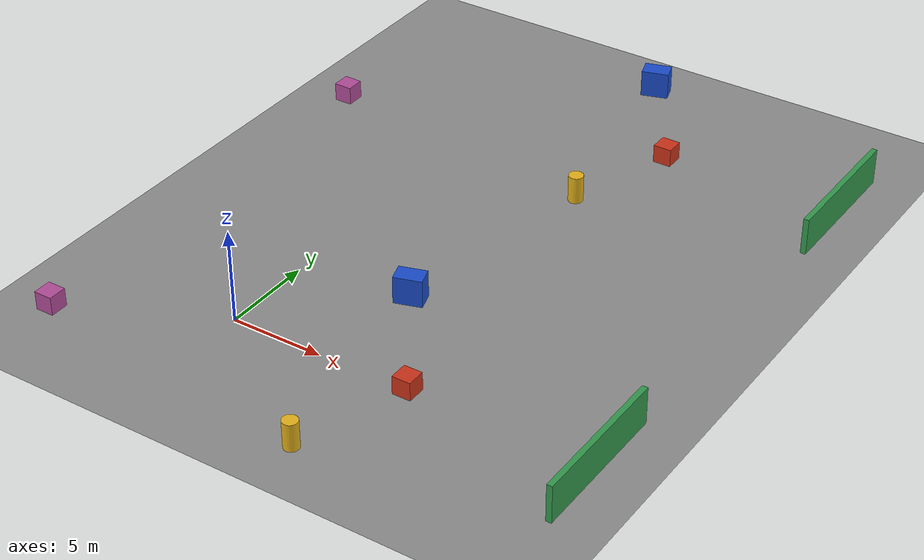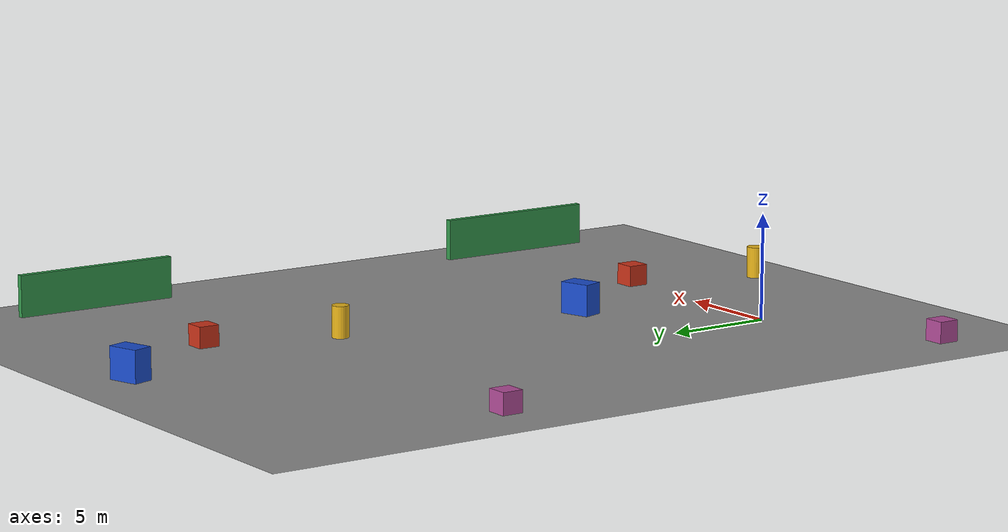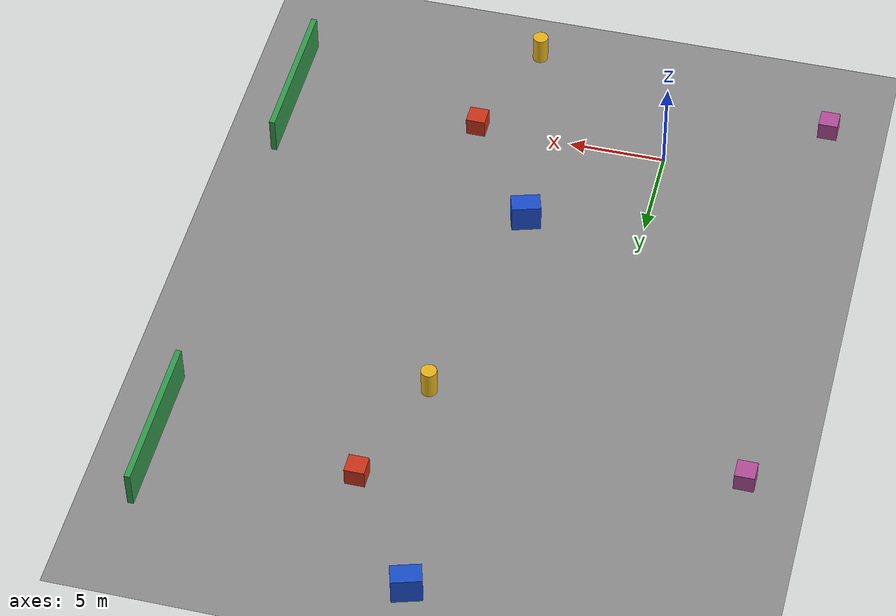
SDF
<sdf version="1.6">
 <world name="rover_simple">
  <spherical_coordinates>
   <surface_model>EARTH_WGS84</surface_model>
   <world_frame_orientation>ENU</world_frame_orientation>
   <latitude_deg>-3.123150</latitude_deg>
   <longitude_deg>-41.764495</longitude_deg>
   <elevation>77</elevation>
   <heading_deg>90</heading_deg>
  </spherical_coordinates>
  <physics name="ode" type="ode">
   <max_step_size>0.001</max_step_size>
   <real_time_update_rate>1000</real_time_update_rate>
  </physics>
  <scene><ambient>0.5 0.5 0.5 1</ambient><background>0.7 0.8 0.9 1</background><shadows>false</shadows></scene>
  <light name="sun" type="directional">
   <pose>0 0 10 0 0 0</pose>
   <diffuse>0.9 0.9 0.9 1</diffuse>
   <specular>0.1 0.1 0.1 1</specular>
   <direction>-0.5 0.2 -1</direction>
  </light>
  <model name="ground">
   <static>true</static>
   <link name="link">
    <collision name="collision">
     <geometry><plane><normal>0 0 1</normal><size>120 120</size></plane></geometry>
     <surface><friction><ode><mu>1</mu><mu2>1</mu2></ode></friction></surface>
    </collision>
    <visual name="visual">
     <geometry><plane><normal>0 0 1</normal><size>120 120</size></plane></geometry>
     <material><ambient>0.55 0.55 0.55 1</ambient><diffuse>0.55 0.55 0.55 1</diffuse></material>
    </visual>
   </link>
  </model>
  <model name="box_front">
   <static>true</static>
   <pose>10.0 0.0 0.5 0 0 0</pose>
   <link name="link">
    <collision name="collision"><geometry><box><size>1 1 1</size></box></geometry></collision>
    <visual name="visual">
     <geometry><box><size>1 1 1</size></box></geometry>
     <material><ambient>0.8 0.2 0.1 1</ambient><diffuse>0.8 0.2 0.1 1</diffuse></material>
    </visual>
   </link>
  </model>
  <model name="box_left">
   <static>true</static>
   <pose>6.0 6.0 0.75 0 0 0.3</pose>
   <link name="link">
    <collision name="collision"><geometry><box><size>1.5 1 1.5</size></box></geometry></collision>
    <visual name="visual">
     <geometry><box><size>1.5 1 1.5</size></box></geometry>
     <material><ambient>0.1 0.3 0.8 1</ambient><diffuse>0.1 0.3 0.8 1</diffuse></material>
    </visual>
   </link>
  </model>
  <model name="pillar_right">
   <static>true</static>
   <pose>8.0 -6.0 0.75 0 0 0</pose>
   <link name="link">
    <collision name="collision">
     <geometry><cylinder><radius>0.4</radius><length>1.5</length></cylinder></geometry>
    </collision>
    <visual name="visual">
     <geometry><cylinder><radius>0.4</radius><length>1.5</length></cylinder></geometry>
     <material><ambient>0.9 0.7 0.1 1</ambient><diffuse>0.9 0.7 0.1 1</diffuse></material>
    </visual>
   </link>
  </model>
  <model name="wall">
   <static>true</static>
   <pose>20.0 0.0 1 0 0 0</pose>
   <link name="link">
    <collision name="collision"><geometry><box><size>0.3 8 2</size></box></geometry></collision>
    <visual name="visual">
     <geometry><box><size>0.3 8 2</size></box></geometry>
     <material><ambient>0.2 0.6 0.3 1</ambient><diffuse>0.2 0.6 0.3 1</diffuse></material>
    </visual>
   </link>
  </model>
  <model name="box_back">
   <static>true</static>
   <pose>-8.0 -4.0 0.5 0 0 0</pose>
   <link name="link">
    <collision name="collision"><geometry><box><size>1 1 1</size></box></geometry></collision>
    <visual name="visual">
     <geometry><box><size>1 1 1</size></box></geometry>
     <material><ambient>0.7 0.3 0.6 1</ambient><diffuse>0.7 0.3 0.6 1</diffuse></material>
    </visual>
   </link>
  </model>
  <model name="box_front_2">
   <static>true</static>
   <pose>10.0 24.0 0.5 0 0 0</pose>
   <link name="link">
    <collision name="collision"><geometry><box><size>1 1 1</size></box></geometry></collision>
    <visual name="visual">
     <geometry><box><size>1 1 1</size></box></geometry>
     <material><ambient>0.8 0.2 0.1 1</ambient><diffuse>0.8 0.2 0.1 1</diffuse></material>
    </visual>
   </link>
  </model>
  <model name="box_left_2">
   <static>true</static>
   <pose>6.0 30.0 0.75 0 0 0.3</pose>
   <link name="link">
    <collision name="collision"><geometry><box><size>1.5 1 1.5</size></box></geometry></collision>
    <visual name="visual">
     <geometry><box><size>1.5 1 1.5</size></box></geometry>
     <material><ambient>0.1 0.3 0.8 1</ambient><diffuse>0.1 0.3 0.8 1</diffuse></material>
    </visual>
   </link>
  </model>
  <model name="pillar_right_2">
   <static>true</static>
   <pose>8.0 18.0 0.75 0 0 0</pose>
   <link name="link">
    <collision name="collision">
     <geometry><cylinder><radius>0.4</radius><length>1.5</length></cylinder></geometry>
    </collision>
    <visual name="visual">
     <geometry><cylinder><radius>0.4</radius><length>1.5</length></cylinder></geometry>
     <material><ambient>0.9 0.7 0.1 1</ambient><diffuse>0.9 0.7 0.1 1</diffuse></material>
    </visual>
   </link>
  </model>
  <model name="wall_2">
   <static>true</static>
   <pose>20.0 24.0 1 0 0 0</pose>
   <link name="link">
    <collision name="collision"><geometry><box><size>0.3 8 2</size></box></geometry></collision>
    <visual name="visual">
     <geometry><box><size>0.3 8 2</size></box></geometry>
     <material><ambient>0.2 0.6 0.3 1</ambient><diffuse>0.2 0.6 0.3 1</diffuse></material>
    </visual>
   </link>
  </model>
  <model name="box_back_2">
   <static>true</static>
   <pose>-8.0 20.0 0.5 0 0 0</pose>
   <link name="link">
    <collision name="collision"><geometry><box><size>1 1 1</size></box></geometry></collision>
    <visual name="visual">
     <geometry><box><size>1 1 1</size></box></geometry>
     <material><ambient>0.7 0.3 0.6 1</ambient><diffuse>0.7 0.3 0.6 1</diffuse></material>
    </visual>
   </link>
  </model>
 </world>
</sdf>
